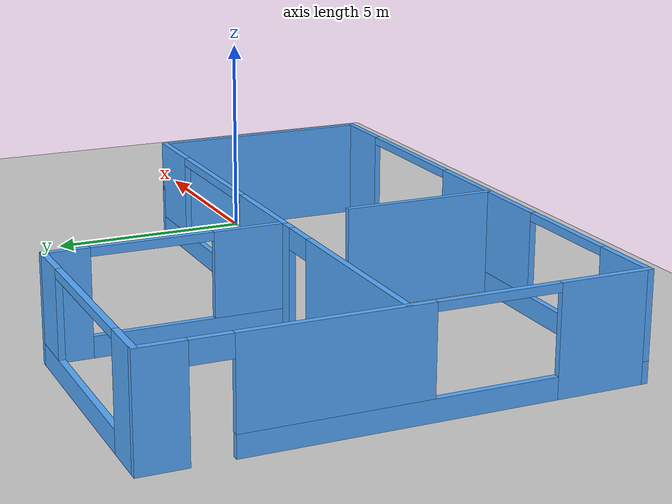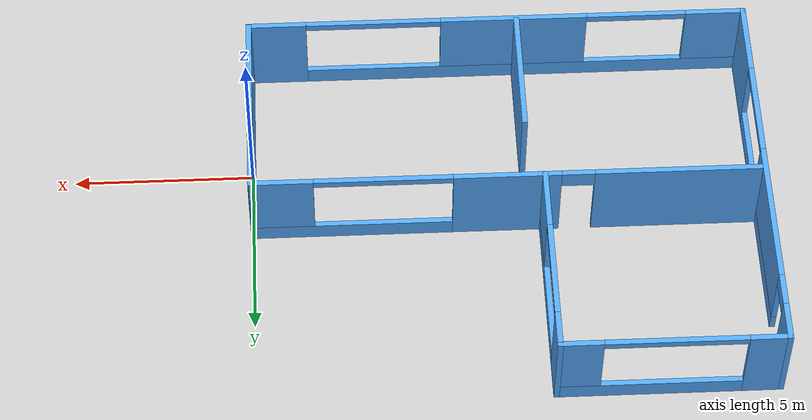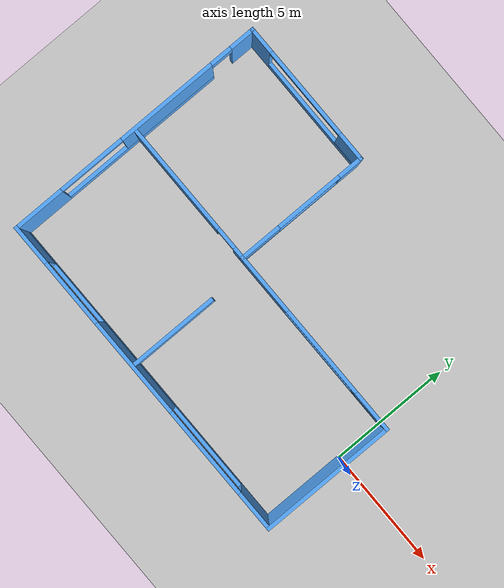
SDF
<sdf version="1.6">
 <world name="default">
  <model name="ground_plane">
   <static>1</static>
   <link name="link">
    <collision name="collision">
     <geometry><plane><normal>0 0 1</normal><size>100 100</size></plane></geometry>
     <surface>
      <contact><collide_bitmask>65535</collide_bitmask></contact>
      <friction><ode><mu>100</mu><mu2>50</mu2></ode></friction>
     </surface>
    </collision>
    <visual name="visual">
     <cast_shadows>0</cast_shadows>
     <geometry><plane><normal>0 0 1</normal><size>100 100</size></plane></geometry>
     <material>
      <script><uri>file://media/materials/scripts/gazebo.material</uri><name>Gazebo/Grey</name></script>
     </material>
    </visual>
   </link>
  </model>
  <model name="Building">
   <pose>-7 2 0 0 -0 0</pose>
   <link name="Wall_0">
    <pose>-4 5.5 0 0 -0 0</pose>
    <visual name="Wall_0_Visual_0">
     <pose>-2.51087 0 1.25 0 -0 0</pose>
     <geometry><box><size>1.12826 0.15 2.5</size></box></geometry>
     <material>
      <script><uri>file://media/materials/scripts/gazebo.material</uri><name>Gazebo/Grey</name></script>
      <ambient>0.333333 0.666667 1 1</ambient>
     </material>
     <meta><layer>0</layer></meta>
    </visual>
    <collision name="Wall_0_Collision_0">
     <geometry><box><size>1.12826 0.15 2.5</size></box></geometry>
     <pose>-2.51087 0 1.25 0 -0 0</pose>
    </collision>
    <visual name="Wall_0_Visual_1">
     <pose>0.564129 0 0.25 0 -0 0</pose>
     <geometry><box><size>5.02174 0.15 0.5</size></box></geometry>
     <material>
      <script><uri>file://media/materials/scripts/gazebo.material</uri><name>Gazebo/Grey</name></script>
      <ambient>0.333333 0.666667 1 1</ambient>
     </material>
     <meta><layer>0</layer></meta>
    </visual>
    <collision name="Wall_0_Collision_1">
     <geometry><box><size>5.02174 0.15 0.5</size></box></geometry>
     <pose>0.564129 0 0.25 0 -0 0</pose>
    </collision>
    <visual name="Wall_0_Visual_2">
     <pose>2.46413 0 1.5 0 -0 0</pose>
     <geometry><box><size>1.22174 0.15 2</size></box></geometry>
     <material>
      <script><uri>file://media/materials/scripts/gazebo.material</uri><name>Gazebo/Grey</name></script>
      <ambient>0.333333 0.666667 1 1</ambient>
     </material>
     <meta><layer>0</layer></meta>
    </visual>
    <collision name="Wall_0_Collision_2">
     <geometry><box><size>1.22174 0.15 2</size></box></geometry>
     <pose>2.46413 0 1.5 0 -0 0</pose>
    </collision>
    <visual name="Wall_0_Visual_3">
     <pose>-0.046741 0 2.4 0 -0 0</pose>
     <geometry><box><size>3.8 0.15 0.2</size></box></geometry>
     <material>
      <script><uri>file://media/materials/scripts/gazebo.material</uri><name>Gazebo/Grey</name></script>
      <ambient>0.333333 0.666667 1 1</ambient>
     </material>
     <meta><layer>0</layer></meta>
    </visual>
    <collision name="Wall_0_Collision_3">
     <geometry><box><size>3.8 0.15 0.2</size></box></geometry>
     <pose>-0.046741 0 2.4 0 -0 0</pose>
    </collision>
   </link>
   <link name="Wall_1">
    <pose>-1 2.75 0 0 0 -1.5708</pose>
    <visual name="Wall_1_Visual_0">
     <pose>-2.28702 0 1.25 0 -0 0</pose>
     <geometry><box><size>1.07597 0.15 2.5</size></box></geometry>
     <material>
      <script><uri>file://media/materials/scripts/gazebo.material</uri><name>Gazebo/Grey</name></script>
      <ambient>0.333333 0.666667 1 1</ambient>
     </material>
     <meta><layer>0</layer></meta>
    </visual>
    <collision name="Wall_1_Collision_0">
     <geometry><box><size>1.07597 0.15 2.5</size></box></geometry>
     <pose>-2.28702 0 1.25 0 -0 0</pose>
    </collision>
    <visual name="Wall_1_Visual_1">
     <pose>0.537983 0 0.25 0 -0 0</pose>
     <geometry><box><size>4.57403 0.15 0.5</size></box></geometry>
     <material>
      <script><uri>file://media/materials/scripts/gazebo.material</uri><name>Gazebo/Grey</name></script>
      <ambient>0.333333 0.666667 1 1</ambient>
     </material>
     <meta><layer>0</layer></meta>
    </visual>
    <collision name="Wall_1_Collision_1">
     <geometry><box><size>4.57403 0.15 0.5</size></box></geometry>
     <pose>0.537983 0 0.25 0 -0 0</pose>
    </collision>
    <visual name="Wall_1_Visual_2">
     <pose>1.93798 0 1.5 0 -0 0</pose>
     <geometry><box><size>1.77403 0.15 2</size></box></geometry>
     <material>
      <script><uri>file://media/materials/scripts/gazebo.material</uri><name>Gazebo/Grey</name></script>
      <ambient>0.333333 0.666667 1 1</ambient>
     </material>
     <meta><layer>0</layer></meta>
    </visual>
    <collision name="Wall_1_Collision_2">
     <geometry><box><size>1.77403 0.15 2</size></box></geometry>
     <pose>1.93798 0 1.5 0 -0 0</pose>
    </collision>
    <visual name="Wall_1_Visual_3">
     <pose>-0.349034 0 2.4 0 -0 0</pose>
     <geometry><box><size>2.8 0.15 0.2</size></box></geometry>
     <material>
      <script><uri>file://media/materials/scripts/gazebo.material</uri><name>Gazebo/Grey</name></script>
      <ambient>0.333333 0.666667 1 1</ambient>
     </material>
     <meta><layer>0</layer></meta>
    </visual>
    <collision name="Wall_1_Collision_3">
     <geometry><box><size>2.8 0.15 0.2</size></box></geometry>
     <pose>-0.349034 0 2.4 0 -0 0</pose>
    </collision>
   </link>
   <link name="Wall_2">
    <pose>3 0 0 0 -0 0</pose>
    <visual name="Wall_2_Visual_0">
     <pose>-2.78896 0 1.25 0 -0 0</pose>
     <geometry><box><size>2.57208 0.15 2.5</size></box></geometry>
     <material>
      <script><uri>file://media/materials/scripts/gazebo.material</uri><name>Gazebo/Grey</name></script>
      <ambient>0.333333 0.666667 1 1</ambient>
     </material>
     <meta><layer>0</layer></meta>
    </visual>
    <collision name="Wall_2_Collision_0">
     <geometry><box><size>2.57208 0.15 2.5</size></box></geometry>
     <pose>-2.78896 0 1.25 0 -0 0</pose>
    </collision>
    <visual name="Wall_2_Visual_1">
     <pose>1.28604 0 0.25 0 -0 0</pose>
     <geometry><box><size>5.57791 0.15 0.5</size></box></geometry>
     <material>
      <script><uri>file://media/materials/scripts/gazebo.material</uri><name>Gazebo/Grey</name></script>
      <ambient>0.333333 0.666667 1 1</ambient>
     </material>
     <meta><layer>0</layer></meta>
    </visual>
    <collision name="Wall_2_Collision_1">
     <geometry><box><size>5.57791 0.15 0.5</size></box></geometry>
     <pose>1.28604 0 0.25 0 -0 0</pose>
    </collision>
    <visual name="Wall_2_Visual_2">
     <pose>3.18604 0 1.5 0 -0 0</pose>
     <geometry><box><size>1.77791 0.15 2</size></box></geometry>
     <material>
      <script><uri>file://media/materials/scripts/gazebo.material</uri><name>Gazebo/Grey</name></script>
      <ambient>0.333333 0.666667 1 1</ambient>
     </material>
     <meta><layer>0</layer></meta>
    </visual>
    <collision name="Wall_2_Collision_2">
     <geometry><box><size>1.77791 0.15 2</size></box></geometry>
     <pose>3.18604 0 1.5 0 -0 0</pose>
    </collision>
    <visual name="Wall_2_Visual_3">
     <pose>0.397085 0 2.4 0 -0 0</pose>
     <geometry><box><size>3.8 0.15 0.2</size></box></geometry>
     <material>
      <script><uri>file://media/materials/scripts/gazebo.material</uri><name>Gazebo/Grey</name></script>
      <ambient>0.333333 0.666667 1 1</ambient>
     </material>
     <meta><layer>0</layer></meta>
    </visual>
    <collision name="Wall_2_Collision_3">
     <geometry><box><size>3.8 0.15 0.2</size></box></geometry>
     <pose>0.397085 0 2.4 0 -0 0</pose>
    </collision>
   </link>
   <link name="Wall_3">
    <collision name="Wall_3_Collision">
     <geometry><box><size>5.65 0.15 2.5</size></box></geometry>
     <pose>0 0 1.25 0 -0 0</pose>
    </collision>
    <visual name="Wall_3_Visual">
     <pose>0 0 1.25 0 -0 0</pose>
     <geometry><box><size>5.65 0.15 2.5</size></box></geometry>
     <material>
      <script><uri>file://media/materials/scripts/gazebo.material</uri><name>Gazebo/Grey</name></script>
      <ambient>0.333333 0.666667 1 1</ambient>
     </material>
     <meta><layer>0</layer></meta>
    </visual>
    <pose>7 -2.75 0 0 0 -1.5708</pose>
   </link>
   <link name="Wall_4">
    <pose>0 -5.5 0 0 -0 3.14159</pose>
    <visual name="Wall_4_Visual_0">
     <pose>-6.2265 0 1.25 0 -0 0</pose>
     <geometry><box><size>1.697 0.15 2.5</size></box></geometry>
     <material>
      <script><uri>file://media/materials/scripts/gazebo.material</uri><name>Gazebo/Grey</name></script>
      <ambient>0.333333 0.666667 1 1</ambient>
     </material>
     <meta><layer>0</layer></meta>
    </visual>
    <collision name="Wall_4_Collision_0">
     <geometry><box><size>1.697 0.15 2.5</size></box></geometry>
     <pose>-6.2265 0 1.25 0 -0 0</pose>
    </collision>
    <visual name="Wall_4_Visual_1">
     <pose>0.8485 0 0.25 0 -0 0</pose>
     <geometry><box><size>12.453 0.15 0.5</size></box></geometry>
     <material>
      <script><uri>file://media/materials/scripts/gazebo.material</uri><name>Gazebo/Grey</name></script>
      <ambient>0.333333 0.666667 1 1</ambient>
     </material>
     <meta><layer>0</layer></meta>
    </visual>
    <collision name="Wall_4_Collision_1">
     <geometry><box><size>12.453 0.15 0.5</size></box></geometry>
     <pose>0.8485 0 0.25 0 -0 0</pose>
    </collision>
    <visual name="Wall_4_Visual_2">
     <pose>0.493915 0 1.5 0 -0 0</pose>
     <geometry><box><size>4.14383 0.15 2</size></box></geometry>
     <material>
      <script><uri>file://media/materials/scripts/gazebo.material</uri><name>Gazebo/Grey</name></script>
      <ambient>0.333333 0.666667 1 1</ambient>
     </material>
     <meta><layer>0</layer></meta>
    </visual>
    <collision name="Wall_4_Collision_2">
     <geometry><box><size>4.14383 0.15 2</size></box></geometry>
     <pose>0.493915 0 1.5 0 -0 0</pose>
    </collision>
    <visual name="Wall_4_Visual_3">
     <pose>6.22042 0 1.5 0 -0 0</pose>
     <geometry><box><size>1.70917 0.15 2</size></box></geometry>
     <material>
      <script><uri>file://media/materials/scripts/gazebo.material</uri><name>Gazebo/Grey</name></script>
      <ambient>0.333333 0.666667 1 1</ambient>
     </material>
     <meta><layer>0</layer></meta>
    </visual>
    <collision name="Wall_4_Collision_3">
     <geometry><box><size>1.70917 0.15 2</size></box></geometry>
     <pose>6.22042 0 1.5 0 -0 0</pose>
    </collision>
    <visual name="Wall_4_Visual_4">
     <pose>-3.478 0 2.4 0 -0 0</pose>
     <geometry><box><size>3.8 0.15 0.2</size></box></geometry>
     <material>
      <script><uri>file://media/materials/scripts/gazebo.material</uri><name>Gazebo/Grey</name></script>
      <ambient>0.333333 0.666667 1 1</ambient>
     </material>
     <meta><layer>0</layer></meta>
    </visual>
    <collision name="Wall_4_Collision_4">
     <geometry><box><size>3.8 0.15 0.2</size></box></geometry>
     <pose>-3.478 0 2.4 0 -0 0</pose>
    </collision>
    <visual name="Wall_4_Visual_5">
     <pose>3.96583 0 2.4 0 -0 0</pose>
     <geometry><box><size>2.8 0.15 0.2</size></box></geometry>
     <material>
      <script><uri>file://media/materials/scripts/gazebo.material</uri><name>Gazebo/Grey</name></script>
      <ambient>0.333333 0.666667 1 1</ambient>
     </material>
     <meta><layer>0</layer></meta>
    </visual>
    <collision name="Wall_4_Collision_5">
     <geometry><box><size>2.8 0.15 0.2</size></box></geometry>
     <pose>3.96583 0 2.4 0 -0 0</pose>
    </collision>
   </link>
   <link name="Wall_5">
    <pose>-7 0 0 0 -0 1.5708</pose>
    <visual name="Wall_5_Visual_0">
     <pose>-4.48668 0 1.25 0 -0 0</pose>
     <geometry><box><size>2.17663 0.15 2.5</size></box></geometry>
     <material>
      <script><uri>file://media/materials/scripts/gazebo.material</uri><name>Gazebo/Grey</name></script>
      <ambient>0.333333 0.666667 1 1</ambient>
     </material>
     <meta><layer>0</layer></meta>
    </visual>
    <collision name="Wall_5_Collision_0">
     <geometry><box><size>2.17663 0.15 2.5</size></box></geometry>
     <pose>-4.48668 0 1.25 0 -0 0</pose>
    </collision>
    <visual name="Wall_5_Visual_1">
     <pose>5.02726 0 1.25 0 -0 0</pose>
     <geometry><box><size>1.09549 0.15 2.5</size></box></geometry>
     <material>
      <script><uri>file://media/materials/scripts/gazebo.material</uri><name>Gazebo/Grey</name></script>
      <ambient>0.333333 0.666667 1 1</ambient>
     </material>
     <meta><layer>0</layer></meta>
    </visual>
    <collision name="Wall_5_Collision_1">
     <geometry><box><size>1.09549 0.15 2.5</size></box></geometry>
     <pose>5.02726 0 1.25 0 -0 0</pose>
    </collision>
    <visual name="Wall_5_Visual_2">
     <pose>0.090572 0 0.25 0 -0 0</pose>
     <geometry><box><size>6.97788 0.15 0.5</size></box></geometry>
     <material>
      <script><uri>file://media/materials/scripts/gazebo.material</uri><name>Gazebo/Grey</name></script>
      <ambient>0.333333 0.666667 1 1</ambient>
     </material>
     <meta><layer>0</layer></meta>
    </visual>
    <collision name="Wall_5_Collision_2">
     <geometry><box><size>6.97788 0.15 0.5</size></box></geometry>
     <pose>0.090572 0 0.25 0 -0 0</pose>
    </collision>
    <visual name="Wall_5_Visual_3">
     <pose>1.49057 0 1.5 0 -0 0</pose>
     <geometry><box><size>4.17788 0.15 2</size></box></geometry>
     <material>
      <script><uri>file://media/materials/scripts/gazebo.material</uri><name>Gazebo/Grey</name></script>
      <ambient>0.333333 0.666667 1 1</ambient>
     </material>
     <meta><layer>0</layer></meta>
    </visual>
    <collision name="Wall_5_Collision_3">
     <geometry><box><size>4.17788 0.15 2</size></box></geometry>
     <pose>1.49057 0 1.5 0 -0 0</pose>
    </collision>
    <visual name="Wall_5_Visual_4">
     <pose>4.02951 0 2.25 0 -0 0</pose>
     <geometry><box><size>0.9 0.15 0.5</size></box></geometry>
     <material>
      <script><uri>file://media/materials/scripts/gazebo.material</uri><name>Gazebo/Grey</name></script>
      <ambient>0.333333 0.666667 1 1</ambient>
     </material>
     <meta><layer>0</layer></meta>
    </visual>
    <collision name="Wall_5_Collision_4">
     <geometry><box><size>0.9 0.15 0.5</size></box></geometry>
     <pose>4.02951 0 2.25 0 -0 0</pose>
    </collision>
    <visual name="Wall_5_Visual_5">
     <pose>-1.99837 0 2.4 0 -0 0</pose>
     <geometry><box><size>2.8 0.15 0.2</size></box></geometry>
     <material>
      <script><uri>file://media/materials/scripts/gazebo.material</uri><name>Gazebo/Grey</name></script>
      <ambient>0.333333 0.666667 1 1</ambient>
     </material>
     <meta><layer>0</layer></meta>
    </visual>
    <collision name="Wall_5_Collision_5">
     <geometry><box><size>2.8 0.15 0.2</size></box></geometry>
     <pose>-1.99837 0 2.4 0 -0 0</pose>
    </collision>
   </link>
   <link name="Wall_7">
    <collision name="Wall_7_Collision">
     <geometry><box><size>3.75 0.15 2.5</size></box></geometry>
     <pose>0 0 1.25 0 -0 0</pose>
    </collision>
    <visual name="Wall_7_Visual">
     <pose>0 0 1.25 0 -0 0</pose>
     <geometry><box><size>3.75 0.15 2.5</size></box></geometry>
     <material>
      <script><uri>file://media/materials/scripts/gazebo.material</uri><name>Gazebo/Grey</name></script>
      <ambient>0.333333 0.666667 1 1</ambient>
     </material>
     <meta><layer>0</layer></meta>
    </visual>
    <pose>-0.567561 -3.63655 0 0 0 -1.5708</pose>
   </link>
   <link name="Wall_9">
    <pose>-4 0 0 0 -0 0</pose>
    <visual name="Wall_9_Visual_0">
     <pose>-0.713798 0 1.25 0 -0 0</pose>
     <geometry><box><size>4.7224 0.15 2.5</size></box></geometry>
     <material>
      <script><uri>file://media/materials/scripts/gazebo.material</uri><name>Gazebo/Grey</name></script>
      <ambient>0.333333 0.666667 1 1</ambient>
     </material>
     <meta><layer>0</layer></meta>
    </visual>
    <collision name="Wall_9_Collision_0">
     <geometry><box><size>4.7224 0.15 2.5</size></box></geometry>
     <pose>-0.713798 0 1.25 0 -0 0</pose>
    </collision>
    <visual name="Wall_9_Visual_1">
     <pose>2.8112 0 1.25 0 -0 0</pose>
     <geometry><box><size>0.527596 0.15 2.5</size></box></geometry>
     <material>
      <script><uri>file://media/materials/scripts/gazebo.material</uri><name>Gazebo/Grey</name></script>
      <ambient>0.333333 0.666667 1 1</ambient>
     </material>
     <meta><layer>0</layer></meta>
    </visual>
    <collision name="Wall_9_Collision_1">
     <geometry><box><size>0.527596 0.15 2.5</size></box></geometry>
     <pose>2.8112 0 1.25 0 -0 0</pose>
    </collision>
    <visual name="Wall_9_Visual_2">
     <pose>2.0974 0 2.25 0 -0 0</pose>
     <geometry><box><size>0.9 0.15 0.5</size></box></geometry>
     <material>
      <script><uri>file://media/materials/scripts/gazebo.material</uri><name>Gazebo/Grey</name></script>
      <ambient>0.333333 0.666667 1 1</ambient>
     </material>
     <meta><layer>0</layer></meta>
    </visual>
    <collision name="Wall_9_Collision_2">
     <geometry><box><size>0.9 0.15 0.5</size></box></geometry>
     <pose>2.0974 0 2.25 0 -0 0</pose>
    </collision>
   </link>
   <static>1</static>
  </model>
 </world>
</sdf>
